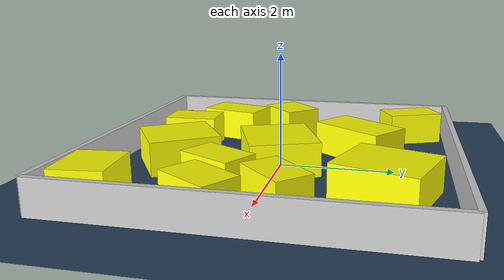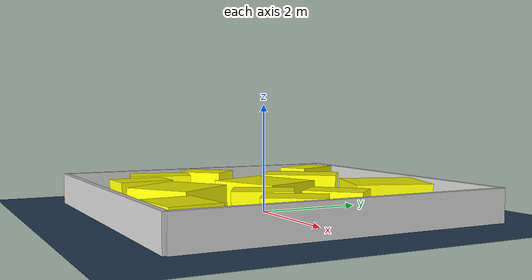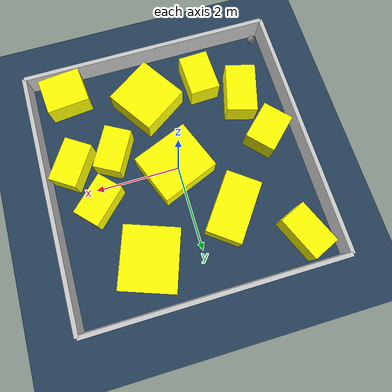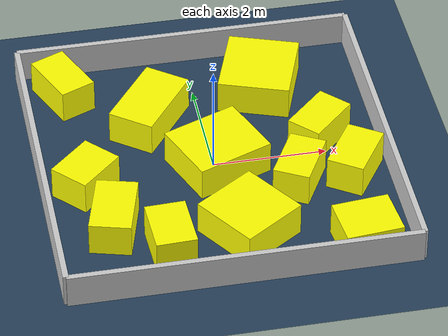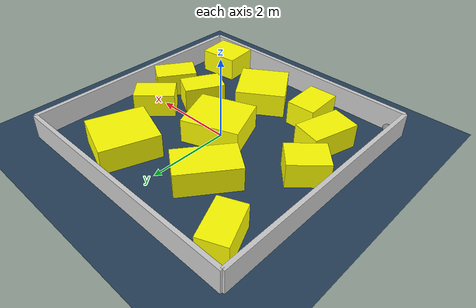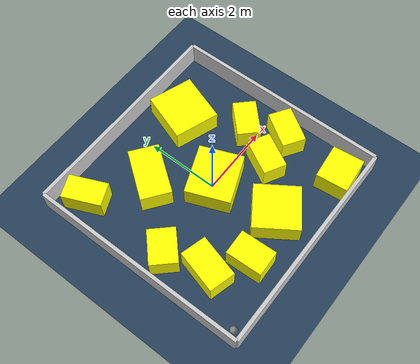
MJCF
<?xml version="1.0" ?>
<mujoco model="generated_environment">
  <option timestep="0.01" integrator="RK4" cone="elliptic"/>
  <default>
    <geom density="1"/>
  </default>
  <asset>
    <texture builtin="gradient" height="3072" rgb1="0.3 0.5 0.7" rgb2="0 0 0" type="skybox" width="512"/>
    <texture builtin="checker" height="300" mark="edge" markrgb="0.8 0.8 0.8" name="groundplane" rgb1="0.2 0.3 0.4" rgb2="0.1 0.2 0.3" type="2d" width="300"/>
    <material name="groundplane" reflectance="0.2" texrepeat="5 5" texture="groundplane" texuniform="true"/>
    <material name="robot" rgba="1.0 1.0 0.0 1.0"/>
  </asset>
  <worldbody>
    <light dir="0 0 -1" directional="true" pos="0 0 1.5"/>
    <geom condim="4" friction="0.5 0.005 0.001" material="groundplane" name="floor" size="0 0 0.05" type="plane"/>
    <body name="walls">
      <geom name="wall_1" condim="4" pos="-3.0 0.0 0.3" rgba="0.800000011920929 0.800000011920929 0.800000011920929 1.0" size="0.05 3.0 0.3" type="box"/>
      <geom name="wall_2" condim="4" pos="3.0 0.0 0.3" rgba="0.800000011920929 0.800000011920929 0.800000011920929 1.0" size="0.05 3.0 0.3" type="box"/>
      <geom name="wall_3" condim="4" pos="0.0 -3.0 0.3" rgba="0.800000011920929 0.800000011920929 0.800000011920929 1.0" size="3.0 0.05 0.3" type="box"/>
      <geom name="wall_4" condim="4" pos="0.0 3.0 0.3" rgba="0.800000011920929 0.800000011920929 0.800000011920929 1.0" size="3.0 0.05 0.3" type="box"/>
    </body>
    <body name="robot">
      <joint name="joint_x" type="slide" pos="0 0 0" axis="1 0 0"/>
      <joint name="joint_y" type="slide" pos="0 0 0" axis="0 1 0"/>
      <geom name="robot" type="sphere" pos="-2.75 -2.75 0.2" size="0.1 0.0 0.0" mass="5.0" friction="1.0 0.005 0.001" condim="4" rgba="0.5 0.5 0.5 1.0"/>
    </body>
    <body name="obstacle_1_movable">
      <geom name="obstacle_1_movable" condim="4" pos="0.0721655984460523 -0.019303537190749953 0.3" euler="0 0 21.700800160723674" friction="0.0 0.005 0.001" rgba="1 1 0 1" size="0.6991271715330365 0.607466128449534 0.3" type="box" mass="0.1"/>
      <joint type="free"/>
    </body>
    <body name="obstacle_2_movable">
      <geom name="obstacle_2_movable" condim="4" pos="-2.287236591825087 2.2686950260165206 0.3" euler="0 0 23.49960169402943" friction="0.0 0.005 0.001" rgba="1 1 0 1" size="0.32607593744892494 0.5343576091059028 0.3" type="box" mass="0.1"/>
      <joint type="free"/>
    </body>
    <body name="obstacle_3_movable">
      <geom name="obstacle_3_movable" condim="4" pos="-2.2594027728924893 -0.2339474989497452 0.3" euler="0 0 223.4090556981975" friction="0.0 0.005 0.001" rgba="1 1 0 1" size="0.47192831491488274 0.36399668948795266 0.3" type="box" mass="0.1"/>
      <joint type="free"/>
    </body>
    <body name="obstacle_4_movable">
      <geom name="obstacle_4_movable" condim="4" pos="1.3687778934421457 -0.7182156215411024 0.3" euler="0 0 331.2288620172782" friction="0.0 0.005 0.001" rgba="1 1 0 1" size="0.32167185657217395 0.5121640029461236 0.3" type="box" mass="0.1"/>
      <joint type="free"/>
    </body>
    <body name="obstacle_5_movable">
      <geom name="obstacle_5_movable" condim="4" pos="0.2734693723208097 -1.8073687098255289 0.3" euler="0 0 123.74303948775095" friction="0.0 0.005 0.001" rgba="1 1 0 1" size="0.6167228353460634 0.609277424160797 0.3" type="box" mass="0.1"/>
      <joint type="free"/>
    </body>
    <body name="obstacle_6_movable">
      <geom name="obstacle_6_movable" condim="4" pos="1.9475710320938893 0.34902980766695935 0.3" euler="0 0 44.139123468015725" friction="0.0 0.005 0.001" rgba="1 1 0 1" size="0.5038970313295115 0.31703779845271174 0.3" type="box" mass="0.1"/>
      <joint type="free"/>
    </body>
    <body name="obstacle_7_movable">
      <geom name="obstacle_7_movable" condim="4" pos="2.151165443270671 -2.4606153319180533 0.3" euler="0 0 185.59176750717236" friction="0.0 0.005 0.001" rgba="1 1 0 1" size="0.4991113052173456 0.43435228939318216 0.3" type="box" mass="0.1"/>
      <joint type="free"/>
    </body>
    <body name="obstacle_8_movable">
      <geom name="obstacle_8_movable" condim="4" pos="2.3574667024035785 -0.6674691622767011 0.3" euler="0 0 236.86919082529178" friction="0.0 0.005 0.001" rgba="1 1 0 1" size="0.5189206823507003 0.32789836122545607 0.3" type="box" mass="0.1"/>
      <joint type="free"/>
    </body>
    <body name="obstacle_9_movable">
      <geom name="obstacle_9_movable" condim="4" pos="-0.8904533042681038 1.325709378645346 0.3" euler="0 0 53.4945218096306" friction="0.0 0.005 0.001" rgba="1 1 0 1" size="0.7283757240941665 0.41505270476428435 0.3" type="box" mass="0.1"/>
      <joint type="free"/>
    </body>
    <body name="obstacle_10_movable">
      <geom name="obstacle_10_movable" condim="4" pos="-1.0964526506620744 -2.0187172850553505 0.3" euler="0 0 182.24746038384754" friction="0.0 0.005 0.001" rgba="1 1 0 1" size="0.35192781116810773 0.4967603436839799 0.3" type="box" mass="0.1"/>
      <joint type="free"/>
    </body>
    <body name="obstacle_11_movable">
      <geom name="obstacle_11_movable" condim="4" pos="1.1827453818641933 1.8920800043461958 0.3" euler="0 0 340.5711976391924" friction="0.0 0.005 0.001" rgba="1 1 0 1" size="0.6326428531194339 0.6971347089548363 0.3" type="box" mass="0.1"/>
      <joint type="free"/>
    </body>
    <body name="obstacle_12_movable">
      <geom name="obstacle_12_movable" condim="4" pos="-1.9534486198790086 -1.3668635375779798 0.3" euler="0 0 254.66959007655683" friction="0.0 0.005 0.001" rgba="1 1 0 1" size="0.5884706513375398 0.3590947164194389 0.3" type="box" mass="0.1"/>
      <joint type="free"/>
    </body>
  </worldbody>
  <actuator>
    <motor name="actuator_x" joint="joint_x" gear="1" ctrlrange="-1 1"/>
    <motor name="actuator_y" joint="joint_y" gear="1" ctrlrange="-1 1"/>
  </actuator>
</mujoco>
